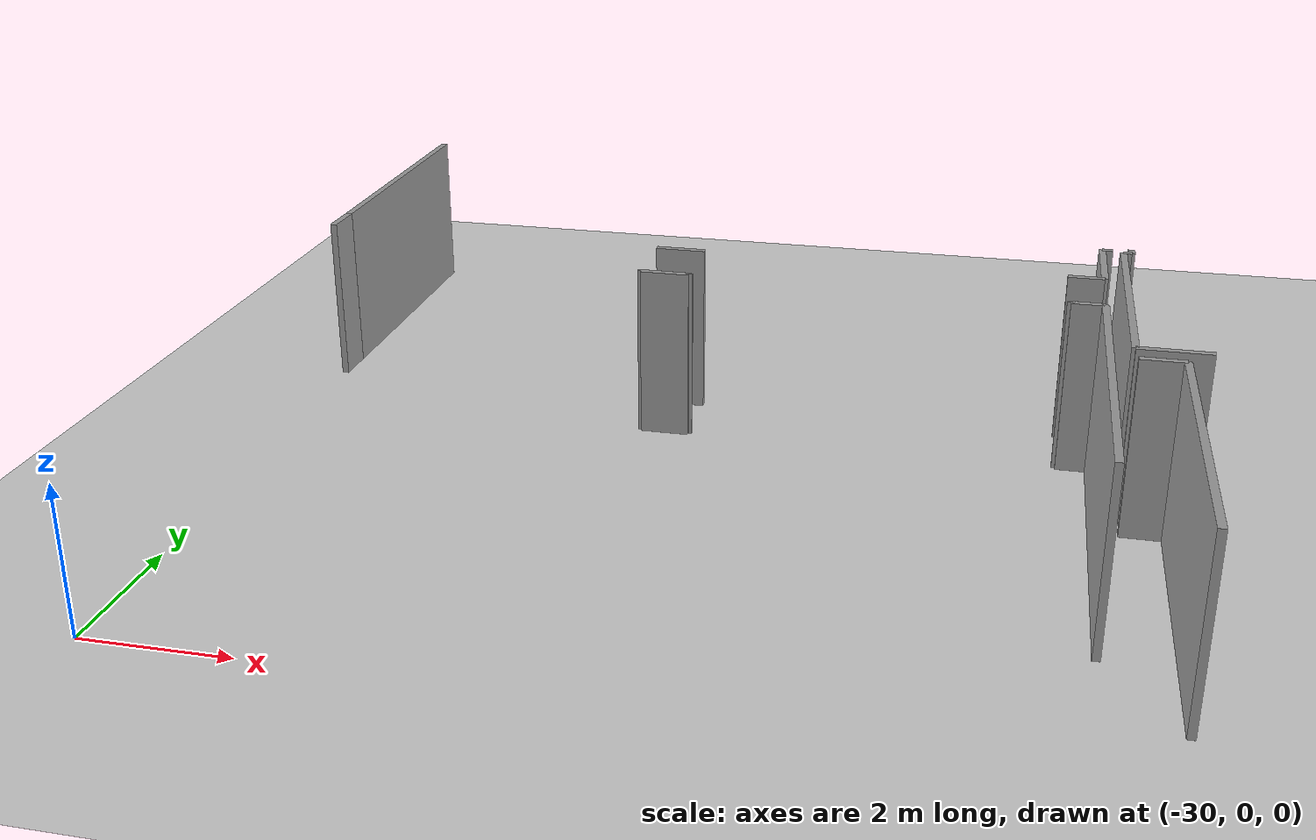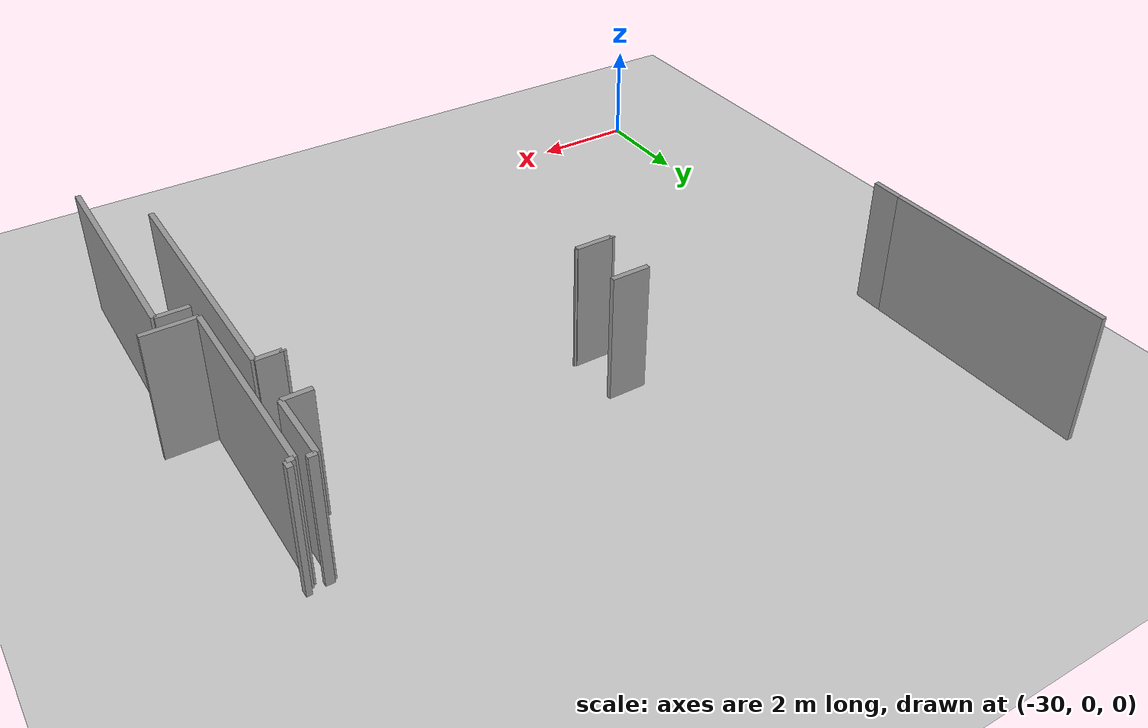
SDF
<sdf version="1.6">
 <world name="default">
  <model name="ground_plane">
   <static>1</static>
   <link name="link">
    <collision name="collision">
     <geometry><plane><normal>0 0 1</normal><size>100 100</size></plane></geometry>
     <surface><friction><ode><mu>100</mu><mu2>50</mu2></ode></friction></surface>
    </collision>
    <visual name="visual">
     <cast_shadows>0</cast_shadows>
     <geometry><plane><normal>0 0 1</normal><size>100 100</size></plane></geometry>
     <material>
      <script><uri>file://media/materials/scripts/gazebo.material</uri><name>Gazebo/Grey</name></script>
     </material>
    </visual>
   </link>
  </model>
  <model name="0510032259_A_40_1_101">
   <static>1</static>
   <link name="Wall_0">
    <collision name="Wall_0_Collision">
     <geometry><box><size>4.41806100799 0.1 2.5</size></box></geometry>
     <pose>2.209030504 0 1.25 0 0 0</pose>
    </collision>
    <visual name="Wall_0_Visual">
     <pose>2.209030504 0 1.25 0 0 0</pose>
     <geometry><box><size>4.41806100799 0.1 2.5</size></box></geometry>
     <material>
      <script><uri>file://media/materials/scripts/gazebo.material</uri><name>Gazebo/Grey</name></script>
      <ambient>1 1 1 1</ambient>
     </material>
    </visual>
    <pose>0.0423066661585 -12.3643455171 0 0 0 1.57079632679</pose>
   </link>
   <link name="Wall_6">
    <collision name="Wall_6_Collision">
     <geometry><box><size>0.153853972126 0.1 2.5</size></box></geometry>
     <pose>0.0769269860629 0 1.25 0 0 0</pose>
    </collision>
    <visual name="Wall_6_Visual">
     <pose>0.0769269860629 0 1.25 0 0 0</pose>
     <geometry><box><size>0.153853972126 0.1 2.5</size></box></geometry>
     <material>
      <script><uri>file://media/materials/scripts/gazebo.material</uri><name>Gazebo/Grey</name></script>
      <ambient>1 1 1 1</ambient>
     </material>
    </visual>
    <pose>11.8607310287 -11.6417019222 0 0 0 3.14159265359</pose>
   </link>
   <link name="Wall_7">
    <collision name="Wall_7_Collision">
     <geometry><box><size>1.31353940364 0.1 2.5</size></box></geometry>
     <pose>0.656769701821 0 1.25 0 0 0</pose>
    </collision>
    <visual name="Wall_7_Visual">
     <pose>0.656769701821 0 1.25 0 0 0</pose>
     <geometry><box><size>1.31353940364 0.1 2.5</size></box></geometry>
     <material>
      <script><uri>file://media/materials/scripts/gazebo.material</uri><name>Gazebo/Grey</name></script>
      <ambient>1 1 1 1</ambient>
     </material>
    </visual>
    <pose>11.7068770566 -11.6417019222 0 0 0 -1.57079632679</pose>
   </link>
   <link name="Wall_8">
    <collision name="Wall_8_Collision">
     <geometry><box><size>0.510602075949 0.1 2.5</size></box></geometry>
     <pose>0.255301037974 0 1.25 0 0 0</pose>
    </collision>
    <visual name="Wall_8_Visual">
     <pose>0.255301037974 0 1.25 0 0 0</pose>
     <geometry><box><size>0.510602075949 0.1 2.5</size></box></geometry>
     <material>
      <script><uri>file://media/materials/scripts/gazebo.material</uri><name>Gazebo/Grey</name></script>
      <ambient>1 1 1 1</ambient>
     </material>
    </visual>
    <pose>11.7068770566 -12.9552413259 0 0 0 3.14159265359</pose>
   </link>
   <link name="Wall_9">
    <collision name="Wall_9_Collision">
     <geometry><box><size>0.72670910038 0.1 2.5</size></box></geometry>
     <pose>0.36335455019 0 1.25 0 0 0</pose>
    </collision>
    <visual name="Wall_9_Visual">
     <pose>0.36335455019 0 1.25 0 0 0</pose>
     <geometry><box><size>0.72670910038 0.1 2.5</size></box></geometry>
     <material>
      <script><uri>file://media/materials/scripts/gazebo.material</uri><name>Gazebo/Grey</name></script>
      <ambient>1 1 1 1</ambient>
     </material>
    </visual>
    <pose>5.94237146015 -12.9552413259 0 0 0 3.14159265359</pose>
   </link>
   <link name="Wall_10">
    <collision name="Wall_10_Collision">
     <geometry><box><size>0.590927275994 0.1 2.5</size></box></geometry>
     <pose>0.295463637997 0 1.25 0 0 0</pose>
    </collision>
    <visual name="Wall_10_Visual">
     <pose>0.295463637997 0 1.25 0 0 0</pose>
     <geometry><box><size>0.590927275994 0.1 2.5</size></box></geometry>
     <material>
      <script><uri>file://media/materials/scripts/gazebo.material</uri><name>Gazebo/Grey</name></script>
      <ambient>1 1 1 1</ambient>
     </material>
    </visual>
    <pose>0.0362084079735 -12.9552413259 0 0 0 1.56047633197</pose>
   </link>
   <link name="Wall_12">
    <collision name="Wall_12_Collision">
     <geometry><box><size>0.0470074068428 0.1 2.5</size></box></geometry>
     <pose>0.0235037034214 0 1.25 0 0 0</pose>
    </collision>
    <visual name="Wall_12_Visual">
     <pose>0.0235037034214 0 1.25 0 0 0</pose>
     <geometry><box><size>0.0470074068428 0.1 2.5</size></box></geometry>
     <material>
      <script><uri>file://media/materials/scripts/gazebo.material</uri><name>Gazebo/Grey</name></script>
      <ambient>1 1 1 1</ambient>
     </material>
    </visual>
    <pose>5.221887665 -13.9886419941 0 0 0 -1.57079632679</pose>
   </link>
   <link name="Wall_13">
    <collision name="Wall_13_Collision">
     <geometry><box><size>0.706127479005 0.1 2.5</size></box></geometry>
     <pose>0.353063739503 0 1.25 0 0 0</pose>
    </collision>
    <visual name="Wall_13_Visual">
     <pose>0.353063739503 0 1.25 0 0 0</pose>
     <geometry><box><size>0.706127479005 0.1 2.5</size></box></geometry>
     <material>
      <script><uri>file://media/materials/scripts/gazebo.material</uri><name>Gazebo/Grey</name></script>
      <ambient>1 1 1 1</ambient>
     </material>
    </visual>
    <pose>5.221887665 -14.035649401 0 0 0 0.0</pose>
   </link>
   <link name="Wall_14">
    <collision name="Wall_14_Collision">
     <geometry><box><size>0.0330322318354 0.1 2.5</size></box></geometry>
     <pose>0.0165161159177 0 1.25 0 0 0</pose>
    </collision>
    <visual name="Wall_14_Visual">
     <pose>0.0165161159177 0 1.25 0 0 0</pose>
     <geometry><box><size>0.0330322318354 0.1 2.5</size></box></geometry>
     <material>
      <script><uri>file://media/materials/scripts/gazebo.material</uri><name>Gazebo/Grey</name></script>
      <ambient>1 1 1 1</ambient>
     </material>
    </visual>
    <pose>5.92801514401 -14.035649401 0 0 0 1.57079632679</pose>
   </link>
   <link name="Wall_15">
    <collision name="Wall_15_Collision">
     <geometry><box><size>0.0414173368398 0.1 2.5</size></box></geometry>
     <pose>0.0207086684199 0 1.25 0 0 0</pose>
    </collision>
    <visual name="Wall_15_Visual">
     <pose>0.0207086684199 0 1.25 0 0 0</pose>
     <geometry><box><size>0.0414173368398 0.1 2.5</size></box></geometry>
     <material>
      <script><uri>file://media/materials/scripts/gazebo.material</uri><name>Gazebo/Grey</name></script>
      <ambient>1 1 1 1</ambient>
     </material>
    </visual>
    <pose>11.2300694947 -14.0026171691 0 0 0 -1.57079632679</pose>
   </link>
   <link name="Wall_16">
    <collision name="Wall_16_Collision">
     <geometry><box><size>0.45838574024 0.1 2.5</size></box></geometry>
     <pose>0.22919287012 0 1.25 0 0 0</pose>
    </collision>
    <visual name="Wall_16_Visual">
     <pose>0.22919287012 0 1.25 0 0 0</pose>
     <geometry><box><size>0.45838574024 0.1 2.5</size></box></geometry>
     <material>
      <script><uri>file://media/materials/scripts/gazebo.material</uri><name>Gazebo/Grey</name></script>
      <ambient>1 1 1 1</ambient>
     </material>
    </visual>
    <pose>11.2300694947 -14.044034506 0 0 0 0.0</pose>
   </link>
   <link name="Wall_17">
    <collision name="Wall_17_Collision">
     <geometry><box><size>4.95851913964 0.1 2.5</size></box></geometry>
     <pose>2.47925956982 0 1.25 0 0 0</pose>
    </collision>
    <visual name="Wall_17_Visual">
     <pose>2.47925956982 0 1.25 0 0 0</pose>
     <geometry><box><size>4.95851913964 0.1 2.5</size></box></geometry>
     <material>
      <script><uri>file://media/materials/scripts/gazebo.material</uri><name>Gazebo/Grey</name></script>
      <ambient>1 1 1 1</ambient>
     </material>
    </visual>
    <pose>11.688455235 -14.044034506 0 0 0 -1.57079632679</pose>
   </link>
   <link name="Wall_36">
    <collision name="Wall_36_Collision">
     <geometry><box><size>0.973434462782 0.1 2.5</size></box></geometry>
     <pose>0.486717231391 0 1.25 0 0 0</pose>
    </collision>
    <visual name="Wall_36_Visual">
     <pose>0.486717231391 0 1.25 0 0 0</pose>
     <geometry><box><size>0.973434462782 0.1 2.5</size></box></geometry>
     <material>
      <script><uri>file://media/materials/scripts/gazebo.material</uri><name>Gazebo/Grey</name></script>
      <ambient>1 1 1 1</ambient>
     </material>
    </visual>
    <pose>12.9830646288 -15.5543697831 0 0 0 3.14159265359</pose>
   </link>
   <link name="Wall_37">
    <collision name="Wall_37_Collision">
     <geometry><box><size>3.84609520906 0.1 2.5</size></box></geometry>
     <pose>1.92304760453 0 1.25 0 0 0</pose>
    </collision>
    <visual name="Wall_37_Visual">
     <pose>1.92304760453 0 1.25 0 0 0</pose>
     <geometry><box><size>3.84609520906 0.1 2.5</size></box></geometry>
     <material>
      <script><uri>file://media/materials/scripts/gazebo.material</uri><name>Gazebo/Grey</name></script>
      <ambient>1 1 1 1</ambient>
     </material>
    </visual>
    <pose>12.0096301661 -15.5543697831 0 0 0 1.57079632679</pose>
   </link>
   <link name="Wall_38">
    <collision name="Wall_38_Collision">
     <geometry><box><size>0.119297175744 0.1 2.5</size></box></geometry>
     <pose>0.0596485878721 0 1.25 0 0 0</pose>
    </collision>
    <visual name="Wall_38_Visual">
     <pose>0.0596485878721 0 1.25 0 0 0</pose>
     <geometry><box><size>0.119297175744 0.1 2.5</size></box></geometry>
     <material>
      <script><uri>file://media/materials/scripts/gazebo.material</uri><name>Gazebo/Grey</name></script>
      <ambient>1 1 1 1</ambient>
     </material>
    </visual>
    <pose>12.0096301661 -11.7082745741 0 0 0 0.0</pose>
   </link>
   <link name="Wall_39">
    <collision name="Wall_39_Collision">
     <geometry><box><size>0.153853972126 0.1 2.5</size></box></geometry>
     <pose>0.0769269860629 0 1.25 0 0 0</pose>
    </collision>
    <visual name="Wall_39_Visual">
     <pose>0.0769269860629 0 1.25 0 0 0</pose>
     <geometry><box><size>0.153853972126 0.1 2.5</size></box></geometry>
     <material>
      <script><uri>file://media/materials/scripts/gazebo.material</uri><name>Gazebo/Grey</name></script>
      <ambient>1 1 1 1</ambient>
     </material>
    </visual>
    <pose>12.1289273418 -11.7082745741 0 0 0 1.57079632679</pose>
   </link>
   <link name="Wall_309">
    <collision name="Wall_309_Collision">
     <geometry><box><size>0.593817890765 0.1 2.5</size></box></geometry>
     <pose>0.296908945382 0 1.25 0 0 0</pose>
    </collision>
    <visual name="Wall_309_Visual">
     <pose>0.296908945382 0 1.25 0 0 0</pose>
     <geometry><box><size>0.593817890765 0.1 2.5</size></box></geometry>
     <material>
      <script><uri>file://media/materials/scripts/gazebo.material</uri><name>Gazebo/Grey</name></script>
      <ambient>1 1 1 1</ambient>
     </material>
    </visual>
    <pose>12.0311011167 -15.8985402294 0 0 0 0.0</pose>
   </link>
   <link name="Wall_310">
    <collision name="Wall_310_Collision">
     <geometry><box><size>4.4136143614 0.1 2.5</size></box></geometry>
     <pose>2.2068071807 0 1.25 0 0 0</pose>
    </collision>
    <visual name="Wall_310_Visual">
     <pose>2.2068071807 0 1.25 0 0 0</pose>
     <geometry><box><size>4.4136143614 0.1 2.5</size></box></geometry>
     <material>
      <script><uri>file://media/materials/scripts/gazebo.material</uri><name>Gazebo/Grey</name></script>
      <ambient>1 1 1 1</ambient>
     </material>
    </visual>
    <pose>12.6249190075 -15.8985402294 0 0 0 -1.57079632679</pose>
   </link>
   <pose>-30.15 21.0617302537 0 0 0 0</pose>
  </model>
 </world>
</sdf>
